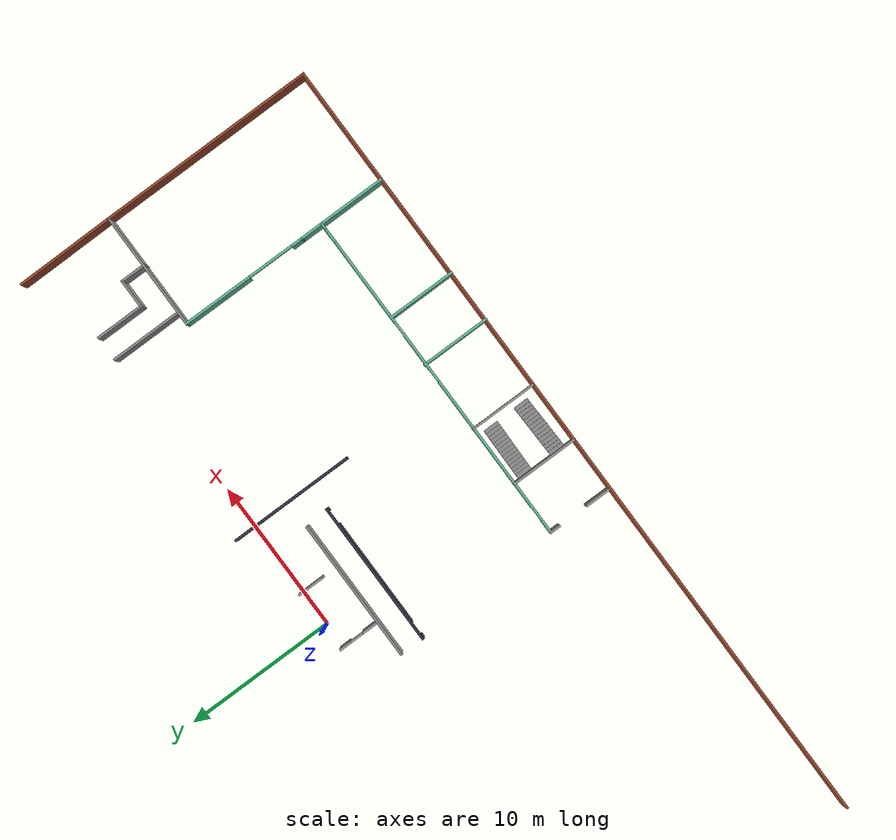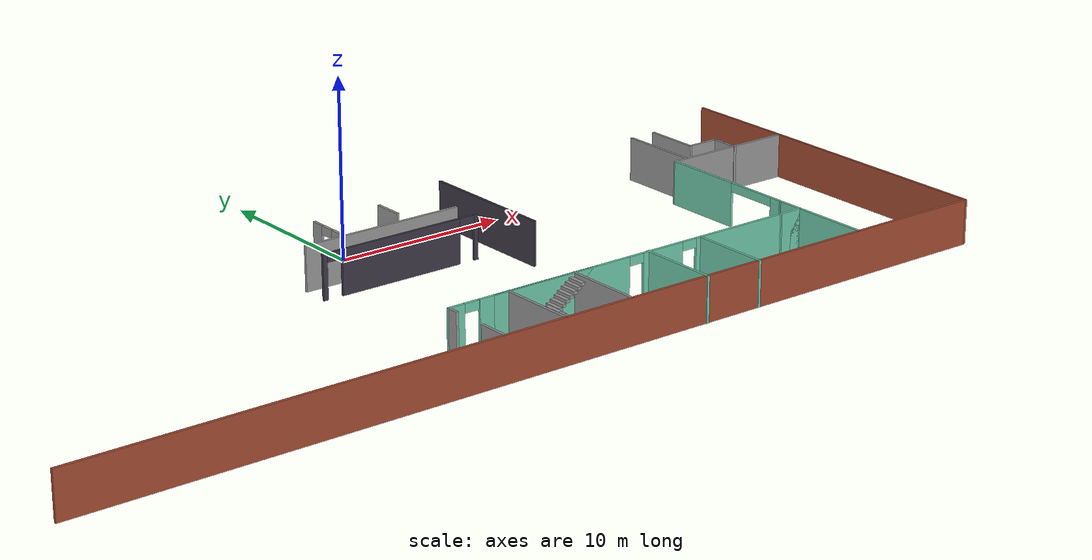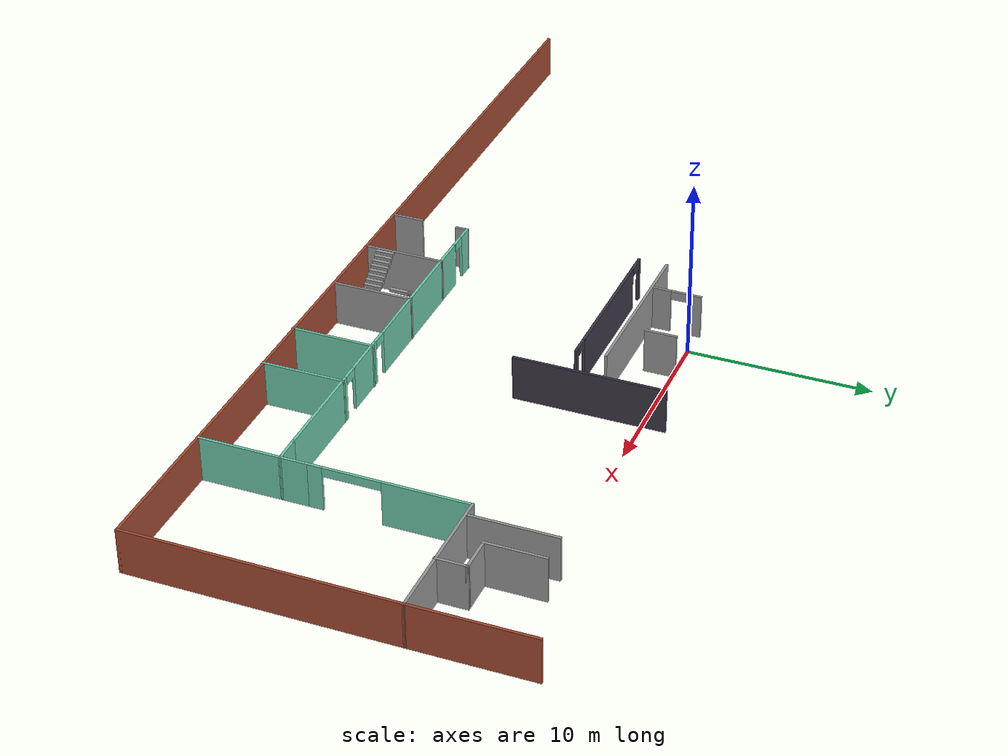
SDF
<sdf version="1.7">
 <model name="circuit_launch">
  <pose>0.02205 -0.005269 0 0 -0 0</pose>
  <link name="Stairs_1">
   <visual name="Stairs_1_Visual_0">
    <pose>3.56304 -17.2142 0.083333 0 -0 -1.5708</pose>
    <geometry><box><size>1 0.233333 0.166667</size></box></geometry>
    <material>
     <script><uri>file://media/materials/scripts/gazebo.material</uri><name>Gazebo/Grey</name></script>
     <ambient>1 1 1 1</ambient>
    </material>
    <meta><layer>0</layer></meta>
   </visual>
   <collision name="Stairs_1_Collision_0">
    <geometry><box><size>1 0.233333 0.166667</size></box></geometry>
    <pose>3.56304 -17.2142 0.083333 0 -0 -1.5708</pose>
   </collision>
   <visual name="Stairs_1_Visual_1">
    <pose>3.32971 -17.2142 0.25 0 -0 -1.5708</pose>
    <geometry><box><size>1 0.233333 0.166667</size></box></geometry>
    <material>
     <script><uri>file://media/materials/scripts/gazebo.material</uri><name>Gazebo/Grey</name></script>
     <ambient>1 1 1 1</ambient>
    </material>
    <meta><layer>0</layer></meta>
   </visual>
   <collision name="Stairs_1_Collision_1">
    <geometry><box><size>1 0.233333 0.166667</size></box></geometry>
    <pose>3.32971 -17.2142 0.25 0 -0 -1.5708</pose>
   </collision>
   <visual name="Stairs_1_Visual_2">
    <pose>3.09638 -17.2142 0.416667 0 -0 -1.5708</pose>
    <geometry><box><size>1 0.233333 0.166667</size></box></geometry>
    <material>
     <script><uri>file://media/materials/scripts/gazebo.material</uri><name>Gazebo/Grey</name></script>
     <ambient>1 1 1 1</ambient>
    </material>
    <meta><layer>0</layer></meta>
   </visual>
   <collision name="Stairs_1_Collision_2">
    <geometry><box><size>1 0.233333 0.166667</size></box></geometry>
    <pose>3.09638 -17.2142 0.416667 0 -0 -1.5708</pose>
   </collision>
   <visual name="Stairs_1_Visual_3">
    <pose>2.86304 -17.2142 0.583333 0 -0 -1.5708</pose>
    <geometry><box><size>1 0.233333 0.166667</size></box></geometry>
    <material>
     <script><uri>file://media/materials/scripts/gazebo.material</uri><name>Gazebo/Grey</name></script>
     <ambient>1 1 1 1</ambient>
    </material>
    <meta><layer>0</layer></meta>
   </visual>
   <collision name="Stairs_1_Collision_3">
    <geometry><box><size>1 0.233333 0.166667</size></box></geometry>
    <pose>2.86304 -17.2142 0.583333 0 -0 -1.5708</pose>
   </collision>
   <visual name="Stairs_1_Visual_4">
    <pose>2.62971 -17.2142 0.75 0 -0 -1.5708</pose>
    <geometry><box><size>1 0.233333 0.166667</size></box></geometry>
    <material>
     <script><uri>file://media/materials/scripts/gazebo.material</uri><name>Gazebo/Grey</name></script>
     <ambient>1 1 1 1</ambient>
    </material>
    <meta><layer>0</layer></meta>
   </visual>
   <collision name="Stairs_1_Collision_4">
    <geometry><box><size>1 0.233333 0.166667</size></box></geometry>
    <pose>2.62971 -17.2142 0.75 0 -0 -1.5708</pose>
   </collision>
   <visual name="Stairs_1_Visual_5">
    <pose>2.39638 -17.2142 0.916667 0 -0 -1.5708</pose>
    <geometry><box><size>1 0.233333 0.166667</size></box></geometry>
    <material>
     <script><uri>file://media/materials/scripts/gazebo.material</uri><name>Gazebo/Grey</name></script>
     <ambient>1 1 1 1</ambient>
    </material>
    <meta><layer>0</layer></meta>
   </visual>
   <collision name="Stairs_1_Collision_5">
    <geometry><box><size>1 0.233333 0.166667</size></box></geometry>
    <pose>2.39638 -17.2142 0.916667 0 -0 -1.5708</pose>
   </collision>
   <visual name="Stairs_1_Visual_6">
    <pose>2.16304 -17.2142 1.08333 0 -0 -1.5708</pose>
    <geometry><box><size>1 0.233333 0.166667</size></box></geometry>
    <material>
     <script><uri>file://media/materials/scripts/gazebo.material</uri><name>Gazebo/Grey</name></script>
     <ambient>1 1 1 1</ambient>
    </material>
    <meta><layer>0</layer></meta>
   </visual>
   <collision name="Stairs_1_Collision_6">
    <geometry><box><size>1 0.233333 0.166667</size></box></geometry>
    <pose>2.16304 -17.2142 1.08333 0 -0 -1.5708</pose>
   </collision>
   <visual name="Stairs_1_Visual_7">
    <pose>1.92971 -17.2142 1.25 0 -0 -1.5708</pose>
    <geometry><box><size>1 0.233333 0.166667</size></box></geometry>
    <material>
     <script><uri>file://media/materials/scripts/gazebo.material</uri><name>Gazebo/Grey</name></script>
     <ambient>1 1 1 1</ambient>
    </material>
    <meta><layer>0</layer></meta>
   </visual>
   <collision name="Stairs_1_Collision_7">
    <geometry><box><size>1 0.233333 0.166667</size></box></geometry>
    <pose>1.92971 -17.2142 1.25 0 -0 -1.5708</pose>
   </collision>
   <visual name="Stairs_1_Visual_8">
    <pose>1.69638 -17.2142 1.41667 0 -0 -1.5708</pose>
    <geometry><box><size>1 0.233333 0.166667</size></box></geometry>
    <material>
     <script><uri>file://media/materials/scripts/gazebo.material</uri><name>Gazebo/Grey</name></script>
     <ambient>1 1 1 1</ambient>
    </material>
    <meta><layer>0</layer></meta>
   </visual>
   <collision name="Stairs_1_Collision_8">
    <geometry><box><size>1 0.233333 0.166667</size></box></geometry>
    <pose>1.69638 -17.2142 1.41667 0 -0 -1.5708</pose>
   </collision>
   <visual name="Stairs_1_Visual_9">
    <pose>1.46304 -17.2142 1.58333 0 -0 -1.5708</pose>
    <geometry><box><size>1 0.233333 0.166667</size></box></geometry>
    <material>
     <script><uri>file://media/materials/scripts/gazebo.material</uri><name>Gazebo/Grey</name></script>
     <ambient>1 1 1 1</ambient>
    </material>
    <meta><layer>0</layer></meta>
   </visual>
   <collision name="Stairs_1_Collision_9">
    <geometry><box><size>1 0.233333 0.166667</size></box></geometry>
    <pose>1.46304 -17.2142 1.58333 0 -0 -1.5708</pose>
   </collision>
   <visual name="Stairs_1_Visual_10">
    <pose>1.22971 -17.2142 1.75 0 -0 -1.5708</pose>
    <geometry><box><size>1 0.233333 0.166667</size></box></geometry>
    <material>
     <script><uri>file://media/materials/scripts/gazebo.material</uri><name>Gazebo/Grey</name></script>
     <ambient>1 1 1 1</ambient>
    </material>
    <meta><layer>0</layer></meta>
   </visual>
   <collision name="Stairs_1_Collision_10">
    <geometry><box><size>1 0.233333 0.166667</size></box></geometry>
    <pose>1.22971 -17.2142 1.75 0 -0 -1.5708</pose>
   </collision>
   <visual name="Stairs_1_Visual_11">
    <pose>0.996375 -17.2142 1.91667 0 -0 -1.5708</pose>
    <geometry><box><size>1 0.233333 0.166667</size></box></geometry>
    <material>
     <script><uri>file://media/materials/scripts/gazebo.material</uri><name>Gazebo/Grey</name></script>
     <ambient>1 1 1 1</ambient>
    </material>
    <meta><layer>0</layer></meta>
   </visual>
   <collision name="Stairs_1_Collision_11">
    <geometry><box><size>1 0.233333 0.166667</size></box></geometry>
    <pose>0.996375 -17.2142 1.91667 0 -0 -1.5708</pose>
   </collision>
   <visual name="Stairs_1_Visual_12">
    <pose>0.763042 -17.2142 2.08333 0 -0 -1.5708</pose>
    <geometry><box><size>1 0.233333 0.166667</size></box></geometry>
    <material>
     <script><uri>file://media/materials/scripts/gazebo.material</uri><name>Gazebo/Grey</name></script>
     <ambient>1 1 1 1</ambient>
    </material>
    <meta><layer>0</layer></meta>
   </visual>
   <collision name="Stairs_1_Collision_12">
    <geometry><box><size>1 0.233333 0.166667</size></box></geometry>
    <pose>0.763042 -17.2142 2.08333 0 -0 -1.5708</pose>
   </collision>
   <visual name="Stairs_1_Visual_13">
    <pose>0.529709 -17.2142 2.25 0 -0 -1.5708</pose>
    <geometry><box><size>1 0.233333 0.166667</size></box></geometry>
    <material>
     <script><uri>file://media/materials/scripts/gazebo.material</uri><name>Gazebo/Grey</name></script>
     <ambient>1 1 1 1</ambient>
    </material>
    <meta><layer>0</layer></meta>
   </visual>
   <collision name="Stairs_1_Collision_13">
    <geometry><box><size>1 0.233333 0.166667</size></box></geometry>
    <pose>0.529709 -17.2142 2.25 0 -0 -1.5708</pose>
   </collision>
   <visual name="Stairs_1_Visual_14">
    <pose>0.296375 -17.2142 2.41667 0 -0 -1.5708</pose>
    <geometry><box><size>1 0.233333 0.166667</size></box></geometry>
    <material>
     <script><uri>file://media/materials/scripts/gazebo.material</uri><name>Gazebo/Grey</name></script>
     <ambient>1 1 1 1</ambient>
    </material>
    <meta><layer>0</layer></meta>
   </visual>
   <collision name="Stairs_1_Collision_14">
    <geometry><box><size>1 0.233333 0.166667</size></box></geometry>
    <pose>0.296375 -17.2142 2.41667 0 -0 -1.5708</pose>
   </collision>
  </link>
  <link name="Stairs_2">
   <visual name="Stairs_2_Visual_0">
    <pose>0.290776 -14.8993 0.083333 0 -0 1.5708</pose>
    <geometry><box><size>1 0.233333 0.166667</size></box></geometry>
    <material>
     <script><uri>file://media/materials/scripts/gazebo.material</uri><name>Gazebo/Grey</name></script>
     <ambient>1 1 1 1</ambient>
    </material>
    <meta><layer>0</layer></meta>
   </visual>
   <collision name="Stairs_2_Collision_0">
    <geometry><box><size>1 0.233333 0.166667</size></box></geometry>
    <pose>0.290776 -14.8993 0.083333 0 -0 1.5708</pose>
   </collision>
   <visual name="Stairs_2_Visual_1">
    <pose>0.524109 -14.8993 0.25 0 -0 1.5708</pose>
    <geometry><box><size>1 0.233333 0.166667</size></box></geometry>
    <material>
     <script><uri>file://media/materials/scripts/gazebo.material</uri><name>Gazebo/Grey</name></script>
     <ambient>1 1 1 1</ambient>
    </material>
    <meta><layer>0</layer></meta>
   </visual>
   <collision name="Stairs_2_Collision_1">
    <geometry><box><size>1 0.233333 0.166667</size></box></geometry>
    <pose>0.524109 -14.8993 0.25 0 -0 1.5708</pose>
   </collision>
   <visual name="Stairs_2_Visual_2">
    <pose>0.757443 -14.8993 0.416667 0 -0 1.5708</pose>
    <geometry><box><size>1 0.233333 0.166667</size></box></geometry>
    <material>
     <script><uri>file://media/materials/scripts/gazebo.material</uri><name>Gazebo/Grey</name></script>
     <ambient>1 1 1 1</ambient>
    </material>
    <meta><layer>0</layer></meta>
   </visual>
   <collision name="Stairs_2_Collision_2">
    <geometry><box><size>1 0.233333 0.166667</size></box></geometry>
    <pose>0.757443 -14.8993 0.416667 0 -0 1.5708</pose>
   </collision>
   <visual name="Stairs_2_Visual_3">
    <pose>0.990776 -14.8993 0.583333 0 -0 1.5708</pose>
    <geometry><box><size>1 0.233333 0.166667</size></box></geometry>
    <material>
     <script><uri>file://media/materials/scripts/gazebo.material</uri><name>Gazebo/Grey</name></script>
     <ambient>1 1 1 1</ambient>
    </material>
    <meta><layer>0</layer></meta>
   </visual>
   <collision name="Stairs_2_Collision_3">
    <geometry><box><size>1 0.233333 0.166667</size></box></geometry>
    <pose>0.990776 -14.8993 0.583333 0 -0 1.5708</pose>
   </collision>
   <visual name="Stairs_2_Visual_4">
    <pose>1.22411 -14.8993 0.75 0 -0 1.5708</pose>
    <geometry><box><size>1 0.233333 0.166667</size></box></geometry>
    <material>
     <script><uri>file://media/materials/scripts/gazebo.material</uri><name>Gazebo/Grey</name></script>
     <ambient>1 1 1 1</ambient>
    </material>
    <meta><layer>0</layer></meta>
   </visual>
   <collision name="Stairs_2_Collision_4">
    <geometry><box><size>1 0.233333 0.166667</size></box></geometry>
    <pose>1.22411 -14.8993 0.75 0 -0 1.5708</pose>
   </collision>
   <visual name="Stairs_2_Visual_5">
    <pose>1.45744 -14.8993 0.916667 0 -0 1.5708</pose>
    <geometry><box><size>1 0.233333 0.166667</size></box></geometry>
    <material>
     <script><uri>file://media/materials/scripts/gazebo.material</uri><name>Gazebo/Grey</name></script>
     <ambient>1 1 1 1</ambient>
    </material>
    <meta><layer>0</layer></meta>
   </visual>
   <collision name="Stairs_2_Collision_5">
    <geometry><box><size>1 0.233333 0.166667</size></box></geometry>
    <pose>1.45744 -14.8993 0.916667 0 -0 1.5708</pose>
   </collision>
   <visual name="Stairs_2_Visual_6">
    <pose>1.69078 -14.8993 1.08333 0 -0 1.5708</pose>
    <geometry><box><size>1 0.233333 0.166667</size></box></geometry>
    <material>
     <script><uri>file://media/materials/scripts/gazebo.material</uri><name>Gazebo/Grey</name></script>
     <ambient>1 1 1 1</ambient>
    </material>
    <meta><layer>0</layer></meta>
   </visual>
   <collision name="Stairs_2_Collision_6">
    <geometry><box><size>1 0.233333 0.166667</size></box></geometry>
    <pose>1.69078 -14.8993 1.08333 0 -0 1.5708</pose>
   </collision>
   <visual name="Stairs_2_Visual_7">
    <pose>1.92411 -14.8993 1.25 0 -0 1.5708</pose>
    <geometry><box><size>1 0.233333 0.166667</size></box></geometry>
    <material>
     <script><uri>file://media/materials/scripts/gazebo.material</uri><name>Gazebo/Grey</name></script>
     <ambient>1 1 1 1</ambient>
    </material>
    <meta><layer>0</layer></meta>
   </visual>
   <collision name="Stairs_2_Collision_7">
    <geometry><box><size>1 0.233333 0.166667</size></box></geometry>
    <pose>1.92411 -14.8993 1.25 0 -0 1.5708</pose>
   </collision>
   <visual name="Stairs_2_Visual_8">
    <pose>2.15744 -14.8993 1.41667 0 -0 1.5708</pose>
    <geometry><box><size>1 0.233333 0.166667</size></box></geometry>
    <material>
     <script><uri>file://media/materials/scripts/gazebo.material</uri><name>Gazebo/Grey</name></script>
     <ambient>1 1 1 1</ambient>
    </material>
    <meta><layer>0</layer></meta>
   </visual>
   <collision name="Stairs_2_Collision_8">
    <geometry><box><size>1 0.233333 0.166667</size></box></geometry>
    <pose>2.15744 -14.8993 1.41667 0 -0 1.5708</pose>
   </collision>
   <visual name="Stairs_2_Visual_9">
    <pose>2.39078 -14.8993 1.58333 0 -0 1.5708</pose>
    <geometry><box><size>1 0.233333 0.166667</size></box></geometry>
    <material>
     <script><uri>file://media/materials/scripts/gazebo.material</uri><name>Gazebo/Grey</name></script>
     <ambient>1 1 1 1</ambient>
    </material>
    <meta><layer>0</layer></meta>
   </visual>
   <collision name="Stairs_2_Collision_9">
    <geometry><box><size>1 0.233333 0.166667</size></box></geometry>
    <pose>2.39078 -14.8993 1.58333 0 -0 1.5708</pose>
   </collision>
   <visual name="Stairs_2_Visual_10">
    <pose>2.62411 -14.8993 1.75 0 -0 1.5708</pose>
    <geometry><box><size>1 0.233333 0.166667</size></box></geometry>
    <material>
     <script><uri>file://media/materials/scripts/gazebo.material</uri><name>Gazebo/Grey</name></script>
     <ambient>1 1 1 1</ambient>
    </material>
    <meta><layer>0</layer></meta>
   </visual>
   <collision name="Stairs_2_Collision_10">
    <geometry><box><size>1 0.233333 0.166667</size></box></geometry>
    <pose>2.62411 -14.8993 1.75 0 -0 1.5708</pose>
   </collision>
   <visual name="Stairs_2_Visual_11">
    <pose>2.85744 -14.8993 1.91667 0 -0 1.5708</pose>
    <geometry><box><size>1 0.233333 0.166667</size></box></geometry>
    <material>
     <script><uri>file://media/materials/scripts/gazebo.material</uri><name>Gazebo/Grey</name></script>
     <ambient>1 1 1 1</ambient>
    </material>
    <meta><layer>0</layer></meta>
   </visual>
   <collision name="Stairs_2_Collision_11">
    <geometry><box><size>1 0.233333 0.166667</size></box></geometry>
    <pose>2.85744 -14.8993 1.91667 0 -0 1.5708</pose>
   </collision>
   <visual name="Stairs_2_Visual_12">
    <pose>3.09078 -14.8993 2.08333 0 -0 1.5708</pose>
    <geometry><box><size>1 0.233333 0.166667</size></box></geometry>
    <material>
     <script><uri>file://media/materials/scripts/gazebo.material</uri><name>Gazebo/Grey</name></script>
     <ambient>1 1 1 1</ambient>
    </material>
    <meta><layer>0</layer></meta>
   </visual>
   <collision name="Stairs_2_Collision_12">
    <geometry><box><size>1 0.233333 0.166667</size></box></geometry>
    <pose>3.09078 -14.8993 2.08333 0 -0 1.5708</pose>
   </collision>
   <visual name="Stairs_2_Visual_13">
    <pose>3.32411 -14.8993 2.25 0 -0 1.5708</pose>
    <geometry><box><size>1 0.233333 0.166667</size></box></geometry>
    <material>
     <script><uri>file://media/materials/scripts/gazebo.material</uri><name>Gazebo/Grey</name></script>
     <ambient>1 1 1 1</ambient>
    </material>
    <meta><layer>0</layer></meta>
   </visual>
   <collision name="Stairs_2_Collision_13">
    <geometry><box><size>1 0.233333 0.166667</size></box></geometry>
    <pose>3.32411 -14.8993 2.25 0 -0 1.5708</pose>
   </collision>
   <visual name="Stairs_2_Visual_14">
    <pose>3.55744 -14.8993 2.41667 0 -0 1.5708</pose>
    <geometry><box><size>1 0.233333 0.166667</size></box></geometry>
    <material>
     <script><uri>file://media/materials/scripts/gazebo.material</uri><name>Gazebo/Grey</name></script>
     <ambient>1 1 1 1</ambient>
    </material>
    <meta><layer>0</layer></meta>
   </visual>
   <collision name="Stairs_2_Collision_14">
    <geometry><box><size>1 0.233333 0.166667</size></box></geometry>
    <pose>3.55744 -14.8993 2.41667 0 -0 1.5708</pose>
   </collision>
  </link>
  <link name="Wall_135">
   <collision name="Wall_135_Collision">
    <geometry><box><size>3.25 0.15 2.5</size></box></geometry>
    <pose>0 0 1.25 0 -0 0</pose>
   </collision>
   <visual name="Wall_135_Visual">
    <pose>0 0 1.25 0 -0 0</pose>
    <geometry><box><size>3.25 0.15 2.5</size></box></geometry>
    <material>
     <script><uri>file://media/materials/scripts/gazebo.material</uri><name>Gazebo/Grey</name></script>
     <ambient>1 1 1 1</ambient>
    </material>
    <meta><layer>0</layer></meta>
   </visual>
   <pose>21.684 -0.963464 0 0 -0 -1.5708</pose>
  </link>
  <link name="Wall_136">
   <collision name="Wall_136_Collision">
    <geometry><box><size>2 0.15 2.5</size></box></geometry>
    <pose>0 0 1.25 0 -0 0</pose>
   </collision>
   <visual name="Wall_136_Visual">
    <pose>0 0 1.25 0 -0 0</pose>
    <geometry><box><size>2 0.15 2.5</size></box></geometry>
    <material>
     <script><uri>file://media/materials/scripts/gazebo.material</uri><name>Gazebo/Grey</name></script>
     <ambient>1 1 1 1</ambient>
    </material>
    <meta><layer>0</layer></meta>
   </visual>
   <pose>22.609 -2.51346 0 0 -0 0</pose>
  </link>
  <link name="Wall_137">
   <collision name="Wall_137_Collision">
    <geometry><box><size>1.75 0.15 2.5</size></box></geometry>
    <pose>0 0 1.25 0 -0 0</pose>
   </collision>
   <visual name="Wall_137_Visual">
    <pose>0 0 1.25 0 -0 0</pose>
    <geometry><box><size>1.75 0.15 2.5</size></box></geometry>
    <material>
     <script><uri>file://media/materials/scripts/gazebo.material</uri><name>Gazebo/Grey</name></script>
     <ambient>1 1 1 1</ambient>
    </material>
    <meta><layer>0</layer></meta>
   </visual>
   <pose>23.534 -3.31346 0 0 -0 -1.5708</pose>
  </link>
  <link name="Wall_139">
   <collision name="Wall_139_Collision">
    <geometry><box><size>0.75 0.15 2.5</size></box></geometry>
    <pose>0 0 1.25 0 -0 0</pose>
   </collision>
   <visual name="Wall_139_Visual">
    <pose>0 0 1.25 0 -0 0</pose>
    <geometry><box><size>0.75 0.15 2.5</size></box></geometry>
    <material>
     <script><uri>file://media/materials/scripts/gazebo.material</uri><name>Gazebo/Grey</name></script>
     <ambient>1 1 1 1</ambient>
    </material>
    <meta><layer>0</layer></meta>
   </visual>
   <pose>-3.52583 -14.3275 0 0 -0 -1.5708</pose>
  </link>
  <link name="Wall_144">
   <collision name="Wall_144_Collision">
    <geometry><box><size>1.75 0.15 2.5</size></box></geometry>
    <pose>0 0 1.25 0 -0 0</pose>
   </collision>
   <visual name="Wall_144_Visual">
    <pose>0 0 1.25 0 -0 0</pose>
    <geometry><box><size>1.75 0.15 2.5</size></box></geometry>
    <material>
     <script><uri>file://media/materials/scripts/gazebo.material</uri><name>Gazebo/Grey</name></script>
     <ambient>1 1 1 1</ambient>
    </material>
    <meta><layer>0</layer></meta>
   </visual>
   <pose>-3.52583 -17.5275 0 0 -0 -1.5708</pose>
  </link>
  <link name="Wall_20">
   <collision name="Wall_20_Collision">
    <geometry><box><size>9.5 0.15 2.5</size></box></geometry>
    <pose>0 0 1.25 0 -0 0</pose>
   </collision>
   <visual name="Wall_20_Visual">
    <pose>0 0 1.25 0 -0 0</pose>
    <geometry><box><size>9.5 0.15 2.5</size></box></geometry>
    <material>
     <script><uri>file://media/materials/scripts/gazebo.material</uri><name>Gazebo/Grey</name></script>
     <ambient>1 1 1 1</ambient>
    </material>
    <meta><layer>0</layer></meta>
   </visual>
   <pose>0.66157 -2.61076 0 0 -0 0</pose>
  </link>
  <link name="Wall_208">
   <collision name="Wall_208_Collision">
    <geometry><box><size>4.5 0.15 2.5</size></box></geometry>
    <pose>0 0 1.25 0 -0 0</pose>
   </collision>
   <visual name="Wall_208_Visual">
    <pose>0 0 1.25 0 -0 0</pose>
    <geometry><box><size>4.5 0.15 2.5</size></box></geometry>
    <material>
     <script><uri>file://media/materials/scripts/gazebo.material</uri><name>Gazebo/Grey</name></script>
     <ambient>1 1 1 1</ambient>
    </material>
    <meta><layer>0</layer></meta>
   </visual>
   <pose>0.066664 -16.1884 0 0 -0 -1.5708</pose>
  </link>
  <link name="Wall_210">
   <collision name="Wall_210_Collision">
    <geometry><box><size>4.5 0.15 2.5</size></box></geometry>
    <pose>0 0 1.25 0 -0 0</pose>
   </collision>
   <visual name="Wall_210_Visual">
    <pose>0 0 1.25 0 -0 0</pose>
    <geometry><box><size>4.5 0.15 2.5</size></box></geometry>
    <material>
     <script><uri>file://media/materials/scripts/gazebo.material</uri><name>Gazebo/Grey</name></script>
     <ambient>1 1 1 1</ambient>
    </material>
    <meta><layer>0</layer></meta>
   </visual>
   <pose>4.12964 -16.1839 0 0 -0 -1.5708</pose>
  </link>
  <link name="Wall_227">
   <collision name="Wall_227_Collision">
    <geometry><box><size>4.6374 0.15 2.5</size></box></geometry>
    <pose>0 0 1.25 0 -0 0</pose>
   </collision>
   <visual name="Wall_227_Visual">
    <pose>0 0 1.25 0 -0 0</pose>
    <geometry><box><size>4.6374 0.15 2.5</size></box></geometry>
    <material>
     <script><uri>file://media/materials/scripts/gazebo.material</uri><name>Gazebo/Grey</name></script>
     <ambient>0.435294 0.796078 0.67451 1</ambient>
    </material>
    <meta><layer>0</layer></meta>
   </visual>
   <pose>8.90387 -16.2159 0 0 -0 -1.5708</pose>
  </link>
  <link name="Wall_231">
   <collision name="Wall_231_Collision">
    <geometry><box><size>4.56795 0.15 2.5</size></box></geometry>
    <pose>0 0 1.25 0 -0 0</pose>
   </collision>
   <visual name="Wall_231_Visual">
    <pose>0 0 1.25 0 -0 0</pose>
    <geometry><box><size>4.56795 0.15 2.5</size></box></geometry>
    <material>
     <script><uri>file://media/materials/scripts/gazebo.material</uri><name>Gazebo/Grey</name></script>
     <ambient>0.435294 0.796078 0.67451 1</ambient>
    </material>
    <meta><layer>0</layer></meta>
   </visual>
   <pose>12.3272 -16.2274 0 0 -0 -1.5708</pose>
  </link>
  <link name="Wall_235">
   <collision name="Wall_235_Collision">
    <geometry><box><size>1.58774 0.15 2.5</size></box></geometry>
    <pose>0 0 1.25 0 -0 0</pose>
   </collision>
   <visual name="Wall_235_Visual">
    <pose>0 0 1.25 0 -0 0</pose>
    <geometry><box><size>1.58774 0.15 2.5</size></box></geometry>
    <material>
     <script><uri>file://media/materials/scripts/gazebo.material</uri><name>Gazebo/Grey</name></script>
     <ambient>0.435294 0.796078 0.67451 1</ambient>
    </material>
    <meta><layer>0</layer></meta>
   </visual>
   <pose>19.234 -13.2964 0 0 -0 -1.56926</pose>
  </link>
  <link name="Wall_237">
   <pose>18.5296 -14.0214 0 0 -0 0.008728</pose>
   <visual name="Wall_237_Visual_0">
    <pose>0 0 1.25 0 -0 0</pose>
    <geometry><box><size>1.56101 0.15 2.5</size></box></geometry>
    <material>
     <script><uri>file://media/materials/scripts/gazebo.material</uri><name>Gazebo/Grey</name></script>
     <ambient>0.435294 0.796078 0.67451 1</ambient>
    </material>
    <meta><layer>0</layer></meta>
   </visual>
   <collision name="Wall_237_Collision_0">
    <geometry><box><size>1.56101 0.15 2.5</size></box></geometry>
    <pose>0 0 1.25 0 -0 0</pose>
   </collision>
   <visual name="Wall_237_Visual_1">
    <pose>0.388137 0 1.25 0 -0 0</pose>
    <geometry><box><size>0.784736 0.15 2.5</size></box></geometry>
    <material>
     <script><uri>file://media/materials/scripts/gazebo.material</uri><name>Gazebo/Grey</name></script>
     <ambient>0.435294 0.796078 0.67451 1</ambient>
    </material>
    <meta><layer>0</layer></meta>
   </visual>
   <collision name="Wall_237_Collision_1">
    <geometry><box><size>0.784736 0.15 2.5</size></box></geometry>
    <pose>0.388137 0 1.25 0 -0 0</pose>
   </collision>
  </link>
  <link name="Wall_239">
   <collision name="Wall_239_Collision">
    <geometry><box><size>4.5 0.15 2.5</size></box></geometry>
    <pose>0 0 1.25 0 -0 0</pose>
   </collision>
   <visual name="Wall_239_Visual">
    <pose>0 0 1.25 0 -0 0</pose>
    <geometry><box><size>4.5 0.15 2.5</size></box></geometry>
    <material>
     <script><uri>file://media/materials/scripts/gazebo.material</uri><name>Gazebo/Grey</name></script>
     <ambient>0.435294 0.796078 0.67451 1</ambient>
    </material>
    <meta><layer>0</layer></meta>
   </visual>
   <pose>19.2351 -16.1902 0 0 -0 -1.5708</pose>
  </link>
  <link name="Wall_24">
   <pose>-1.67128 -1.21881 0 0 -0 -1.5708</pose>
   <visual name="Wall_24_Visual_0">
    <pose>-0.984567 0 1.25 0 -0 0</pose>
    <geometry><box><size>0.780865 0.15 2.5</size></box></geometry>
    <material>
     <script><uri>file://media/materials/scripts/gazebo.material</uri><name>Gazebo/Grey</name></script>
     <ambient>1 1 1 1</ambient>
    </material>
    <meta><layer>0</layer></meta>
   </visual>
   <collision name="Wall_24_Collision_0">
    <geometry><box><size>0.780865 0.15 2.5</size></box></geometry>
    <pose>-0.984567 0 1.25 0 -0 0</pose>
   </collision>
   <visual name="Wall_24_Visual_1">
    <pose>0.840433 0 1.25 0 -0 0</pose>
    <geometry><box><size>1.06913 0.15 2.5</size></box></geometry>
    <material>
     <script><uri>file://media/materials/scripts/gazebo.material</uri><name>Gazebo/Grey</name></script>
     <ambient>1 1 1 1</ambient>
    </material>
    <meta><layer>0</layer></meta>
   </visual>
   <collision name="Wall_24_Collision_1">
    <geometry><box><size>1.06913 0.15 2.5</size></box></geometry>
    <pose>0.840433 0 1.25 0 -0 0</pose>
   </collision>
   <visual name="Wall_24_Visual_2">
    <pose>-0.144135 0 2.25 0 -0 0</pose>
    <geometry><box><size>0.9 0.15 0.5</size></box></geometry>
    <material>
     <script><uri>file://media/materials/scripts/gazebo.material</uri><name>Gazebo/Grey</name></script>
     <ambient>1 1 1 1</ambient>
    </material>
    <meta><layer>0</layer></meta>
   </visual>
   <collision name="Wall_24_Collision_2">
    <geometry><box><size>0.9 0.15 0.5</size></box></geometry>
    <pose>-0.144135 0 2.25 0 -0 0</pose>
   </collision>
  </link>
  <link name="Wall_26">
   <collision name="Wall_26_Collision">
    <geometry><box><size>1.75 0.15 2.5</size></box></geometry>
    <pose>0 0 1.25 0 -0 0</pose>
   </collision>
   <visual name="Wall_26_Visual">
    <pose>0 0 1.25 0 -0 0</pose>
    <geometry><box><size>1.75 0.15 2.5</size></box></geometry>
    <material>
     <script><uri>file://media/materials/scripts/gazebo.material</uri><name>Gazebo/Grey</name></script>
     <ambient>1 1 1 1</ambient>
    </material>
    <meta><layer>0</layer></meta>
   </visual>
   <pose>2.38945 -0.703597 0 0 -0 -1.5708</pose>
  </link>
  <link name="Wall_51">
   <collision name="Wall_51_Collision">
    <geometry><box><size>54.1582 0.15 2.5</size></box></geometry>
    <pose>0 0 1.25 0 -0 0</pose>
   </collision>
   <visual name="Wall_51_Visual">
    <pose>0 0 1.25 0 -0 0</pose>
    <geometry><box><size>54.1582 0.15 2.5</size></box></geometry>
    <material>
     <script><uri>file://media/materials/scripts/gazebo.material</uri><name>Gazebo/Bricks</name></script>
     <ambient>1 1 1 1</ambient>
    </material>
    <meta><layer>0</layer></meta>
   </visual>
   <pose>-0.020714 -18.4097 0 0 -0 -0.000749</pose>
  </link>
  <link name="Wall_52">
   <collision name="Wall_52_Collision">
    <geometry><box><size>14.5 0.15 2.5</size></box></geometry>
    <pose>0 0 1.25 0 -0 0</pose>
   </collision>
   <visual name="Wall_52_Visual">
    <pose>0 0 1.25 0 -0 0</pose>
    <geometry><box><size>14.5 0.15 2.5</size></box></geometry>
    <material>
     <script><uri>file://media/materials/scripts/gazebo.material</uri><name>Gazebo/Bricks</name></script>
     <ambient>1 1 1 1</ambient>
    </material>
    <meta><layer>0</layer></meta>
   </visual>
   <pose>26.9834 -11.255 0 0 -0 1.5708</pose>
  </link>
  <link name="Wall_64">
   <collision name="Wall_64_Collision">
    <geometry><box><size>6.59561 0.15 2.5</size></box></geometry>
    <pose>0 0 1.25 0 -0 0</pose>
   </collision>
   <visual name="Wall_64_Visual">
    <pose>0 0 1.25 0 -0 0</pose>
    <geometry><box><size>6.59561 0.15 2.5</size></box></geometry>
    <material>
     <script><uri>file://media/materials/scripts/gazebo.material</uri><name>Gazebo/Bricks</name></script>
     <ambient>1 1 1 1</ambient>
    </material>
    <meta><layer>0</layer></meta>
   </visual>
   <pose>26.9632 -0.857211 0 0 -0 -1.56452</pose>
  </link>
  <link name="Wall_77">
   <pose>7.14917 -14.0275 0 0 -0 0</pose>
   <visual name="Wall_77_Visual_0">
    <pose>-10.2621 0 1.25 0 -0 0</pose>
    <geometry><box><size>0.975837 0.15 2.5</size></box></geometry>
    <material>
     <script><uri>file://media/materials/scripts/gazebo.material</uri><name>Gazebo/Grey</name></script>
     <ambient>0.435294 0.796078 0.67451 1</ambient>
    </material>
    <meta><layer>0</layer></meta>
   </visual>
   <collision name="Wall_77_Collision_0">
    <geometry><box><size>0.975837 0.15 2.5</size></box></geometry>
    <pose>-10.2621 0 1.25 0 -0 0</pose>
   </collision>
   <visual name="Wall_77_Visual_1">
    <pose>-4.21358 0 1.25 0 -0 0</pose>
    <geometry><box><size>9.32116 0.15 2.5</size></box></geometry>
    <material>
     <script><uri>file://media/materials/scripts/gazebo.material</uri><name>Gazebo/Grey</name></script>
     <ambient>0.435294 0.796078 0.67451 1</ambient>
    </material>
    <meta><layer>0</layer></meta>
   </visual>
   <collision name="Wall_77_Collision_1">
    <geometry><box><size>9.32116 0.15 2.5</size></box></geometry>
    <pose>-4.21358 0 1.25 0 -0 0</pose>
   </collision>
   <visual name="Wall_77_Visual_2">
    <pose>-3.78532 0 1.25 0 -0 0</pose>
    <geometry><box><size>8.46463 0.15 2.5</size></box></geometry>
    <material>
     <script><uri>file://media/materials/scripts/gazebo.material</uri><name>Gazebo/Grey</name></script>
     <ambient>0.435294 0.796078 0.67451 1</ambient>
    </material>
    <meta><layer>0</layer></meta>
   </visual>
   <collision name="Wall_77_Collision_2">
    <geometry><box><size>8.46463 0.15 2.5</size></box></geometry>
    <pose>-3.78532 0 1.25 0 -0 0</pose>
   </collision>
   <visual name="Wall_77_Visual_3">
    <pose>2.64336 0 1.25 0 -0 0</pose>
    <geometry><box><size>2.59272 0.15 2.5</size></box></geometry>
    <material>
     <script><uri>file://media/materials/scripts/gazebo.material</uri><name>Gazebo/Grey</name></script>
     <ambient>0.435294 0.796078 0.67451 1</ambient>
    </material>
    <meta><layer>0</layer></meta>
   </visual>
   <collision name="Wall_77_Collision_3">
    <geometry><box><size>2.59272 0.15 2.5</size></box></geometry>
    <pose>2.64336 0 1.25 0 -0 0</pose>
   </collision>
   <visual name="Wall_77_Visual_4">
    <pose>7.79486 0 1.25 0 -0 0</pose>
    <geometry><box><size>5.91028 0.15 2.5</size></box></geometry>
    <material>
     <script><uri>file://media/materials/scripts/gazebo.material</uri><name>Gazebo/Grey</name></script>
     <ambient>0.435294 0.796078 0.67451 1</ambient>
    </material>
    <meta><layer>0</layer></meta>
   </visual>
   <collision name="Wall_77_Collision_4">
    <geometry><box><size>5.91028 0.15 2.5</size></box></geometry>
    <pose>7.79486 0 1.25 0 -0 0</pose>
   </collision>
   <visual name="Wall_77_Visual_5">
    <pose>-9.3459 0 2.25 0 -0 0</pose>
    <geometry><box><size>0.856526 0.15 0.5</size></box></geometry>
    <material>
     <script><uri>file://media/materials/scripts/gazebo.material</uri><name>Gazebo/Grey</name></script>
     <ambient>0.435294 0.796078 0.67451 1</ambient>
    </material>
    <meta><layer>0</layer></meta>
   </visual>
   <collision name="Wall_77_Collision_5">
    <geometry><box><size>0.856526 0.15 0.5</size></box></geometry>
    <pose>-9.3459 0 2.25 0 -0 0</pose>
   </collision>
   <visual name="Wall_77_Visual_6">
    <pose>0.896997 0 2.25 0 -0 0</pose>
    <geometry><box><size>0.9 0.15 0.5</size></box></geometry>
    <material>
     <script><uri>file://media/materials/scripts/gazebo.material</uri><name>Gazebo/Grey</name></script>
     <ambient>0.435294 0.796078 0.67451 1</ambient>
    </material>
    <meta><layer>0</layer></meta>
   </visual>
   <collision name="Wall_77_Collision_6">
    <geometry><box><size>0.9 0.15 0.5</size></box></geometry>
    <pose>0.896997 0 2.25 0 -0 0</pose>
   </collision>
   <visual name="Wall_77_Visual_7">
    <pose>0.896997 0 2.25 0 -0 0</pose>
    <geometry><box><size>0.9 0.15 0.5</size></box></geometry>
    <material>
     <script><uri>file://media/materials/scripts/gazebo.material</uri><name>Gazebo/Grey</name></script>
     <ambient>0.435294 0.796078 0.67451 1</ambient>
    </material>
    <meta><layer>0</layer></meta>
   </visual>
   <collision name="Wall_77_Collision_7">
    <geometry><box><size>0.9 0.15 0.5</size></box></geometry>
    <pose>0.896997 0 2.25 0 -0 0</pose>
   </collision>
   <visual name="Wall_77_Visual_8">
    <pose>4.38972 0 2.25 0 -0 0</pose>
    <geometry><box><size>0.9 0.15 0.5</size></box></geometry>
    <material>
     <script><uri>file://media/materials/scripts/gazebo.material</uri><name>Gazebo/Grey</name></script>
     <ambient>0.435294 0.796078 0.67451 1</ambient>
    </material>
    <meta><layer>0</layer></meta>
   </visual>
   <collision name="Wall_77_Collision_8">
    <geometry><box><size>0.9 0.15 0.5</size></box></geometry>
    <pose>4.38972 0 2.25 0 -0 0</pose>
   </collision>
  </link>
  <link name="Wall_79">
   <pose>19.2482 -8.32544 0 0 -0 1.5672</pose>
   <visual name="Wall_79_Visual_0">
    <pose>-3.90656 0 1.25 0 -0 0</pose>
    <geometry><box><size>0.841025 0.15 2.5</size></box></geometry>
    <material>
     <script><uri>file://media/materials/scripts/gazebo.material</uri><name>Gazebo/Grey</name></script>
     <ambient>0.435294 0.796078 0.67451 1</ambient>
    </material>
    <meta><layer>0</layer></meta>
   </visual>
   <collision name="Wall_79_Collision_0">
    <geometry><box><size>0.841025 0.15 2.5</size></box></geometry>
    <pose>-3.90656 0 1.25 0 -0 0</pose>
   </collision>
   <visual name="Wall_79_Visual_1">
    <pose>1.96925 0 1.25 0 -0 0</pose>
    <geometry><box><size>4.71564 0.15 2.5</size></box></geometry>
    <material>
     <script><uri>file://media/materials/scripts/gazebo.material</uri><name>Gazebo/Grey</name></script>
     <ambient>0.435294 0.796078 0.67451 1</ambient>
    </material>
    <meta><layer>0</layer></meta>
   </visual>
   <collision name="Wall_79_Collision_1">
    <geometry><box><size>4.71564 0.15 2.5</size></box></geometry>
    <pose>1.96925 0 1.25 0 -0 0</pose>
   </collision>
   <visual name="Wall_79_Visual_2">
    <pose>-1.93731 0 2.25 0 -0 0</pose>
    <geometry><box><size>3.09748 0.15 0.5</size></box></geometry>
    <material>
     <script><uri>file://media/materials/scripts/gazebo.material</uri><name>Gazebo/Grey</name></script>
     <ambient>0.435294 0.796078 0.67451 1</ambient>
    </material>
    <meta><layer>0</layer></meta>
   </visual>
   <collision name="Wall_79_Collision_2">
    <geometry><box><size>3.09748 0.15 0.5</size></box></geometry>
    <pose>-1.93731 0 2.25 0 -0 0</pose>
   </collision>
  </link>
  <link name="Wall_80">
   <collision name="Wall_80_Collision">
    <geometry><box><size>7.86988 0.15 2.5</size></box></geometry>
    <pose>0 0 1.25 0 -0 0</pose>
   </collision>
   <visual name="Wall_80_Visual">
    <pose>0 0 1.25 0 -0 0</pose>
    <geometry><box><size>7.86988 0.15 2.5</size></box></geometry>
    <material>
     <script><uri>file://media/materials/scripts/gazebo.material</uri><name>Gazebo/Grey</name></script>
     <ambient>1 1 1 1</ambient>
    </material>
    <meta><layer>0</layer></meta>
   </visual>
   <pose>23.1234 -4.07668 0 0 -0 -0.000849</pose>
  </link>
  <link name="Wall_82">
   <collision name="Wall_82_Collision">
    <geometry><box><size>8.25 0.15 2.5</size></box></geometry>
    <pose>0 0 1.25 0 -0 0</pose>
   </collision>
   <visual name="Wall_82_Visual">
    <pose>0 0 1.25 0 -0 0</pose>
    <geometry><box><size>8.25 0.15 2.5</size></box></geometry>
    <material>
     <script><uri>file://media/materials/scripts/gazebo.material</uri><name>Gazebo/Grey</name></script>
     <ambient>0.239216 0.219608 0.27451 1</ambient>
    </material>
    <meta><layer>0</layer></meta>
   </visual>
   <pose>7.21096 -2.83129 0 0 -0 -1.5708</pose>
  </link>
  <link name="Wall_9">
   <pose>0.726084 -4.18148 0 0 -0 0</pose>
   <visual name="Wall_9_Visual_0">
    <pose>-4.69913 0 1.25 0 -0 0</pose>
    <geometry><box><size>0.26635 0.15 2.5</size></box></geometry>
    <material>
     <script><uri>file://media/materials/scripts/gazebo.material</uri><name>Gazebo/Grey</name></script>
     <ambient>0.239216 0.219608 0.27451 1</ambient>
    </material>
    <meta><layer>0</layer></meta>
   </visual>
   <collision name="Wall_9_Collision_0">
    <geometry><box><size>0.26635 0.15 2.5</size></box></geometry>
    <pose>-4.69913 0 1.25 0 -0 0</pose>
   </collision>
   <visual name="Wall_9_Visual_1">
    <pose>0.005616 0 1.25 0 -0 0</pose>
    <geometry><box><size>7.34314 0.15 2.5</size></box></geometry>
    <material>
     <script><uri>file://media/materials/scripts/gazebo.material</uri><name>Gazebo/Grey</name></script>
     <ambient>0.239216 0.219608 0.27451 1</ambient>
    </material>
    <meta><layer>0</layer></meta>
   </visual>
   <collision name="Wall_9_Collision_1">
    <geometry><box><size>7.34314 0.15 2.5</size></box></geometry>
    <pose>0.005616 0 1.25 0 -0 0</pose>
   </collision>
   <visual name="Wall_9_Visual_2">
    <pose>4.70475 0 1.25 0 -0 0</pose>
    <geometry><box><size>0.255118 0.15 2.5</size></box></geometry>
    <material>
     <script><uri>file://media/materials/scripts/gazebo.material</uri><name>Gazebo/Grey</name></script>
     <ambient>0.239216 0.219608 0.27451 1</ambient>
    </material>
    <meta><layer>0</layer></meta>
   </visual>
   <collision name="Wall_9_Collision_2">
    <geometry><box><size>0.255118 0.15 2.5</size></box></geometry>
    <pose>4.70475 0 1.25 0 -0 0</pose>
   </collision>
   <visual name="Wall_9_Visual_3">
    <pose>-4.11596 0 2.25 0 -0 0</pose>
    <geometry><box><size>0.9 0.15 0.5</size></box></geometry>
    <material>
     <script><uri>file://media/materials/scripts/gazebo.material</uri><name>Gazebo/Grey</name></script>
     <ambient>0.239216 0.219608 0.27451 1</ambient>
    </material>
    <meta><layer>0</layer></meta>
   </visual>
   <collision name="Wall_9_Collision_3">
    <geometry><box><size>0.9 0.15 0.5</size></box></geometry>
    <pose>-4.11596 0 2.25 0 -0 0</pose>
   </collision>
   <visual name="Wall_9_Visual_4">
    <pose>4.12719 0 2.25 0 -0 0</pose>
    <geometry><box><size>0.9 0.15 0.5</size></box></geometry>
    <material>
     <script><uri>file://media/materials/scripts/gazebo.material</uri><name>Gazebo/Grey</name></script>
     <ambient>0.239216 0.219608 0.27451 1</ambient>
    </material>
    <meta><layer>0</layer></meta>
   </visual>
   <collision name="Wall_9_Collision_4">
    <geometry><box><size>0.9 0.15 0.5</size></box></geometry>
    <pose>4.12719 0 2.25 0 -0 0</pose>
   </collision>
  </link>
  <link name="Wall_95">
   <collision name="Wall_95_Collision">
    <geometry><box><size>4.75 0.15 2.5</size></box></geometry>
    <pose>0 0 1.25 0 -0 0</pose>
   </collision>
   <visual name="Wall_95_Visual">
    <pose>0 0 1.25 0 -0 0</pose>
    <geometry><box><size>4.75 0.15 2.5</size></box></geometry>
    <material>
     <script><uri>file://media/materials/scripts/gazebo.material</uri><name>Gazebo/Grey</name></script>
     <ambient>1 1 1 1</ambient>
    </material>
    <meta><layer>0</layer></meta>
   </visual>
   <pose>20.084 -1.71346 0 0 -0 1.5708</pose>
  </link>
  <static>1</static>
 </model>
</sdf>
